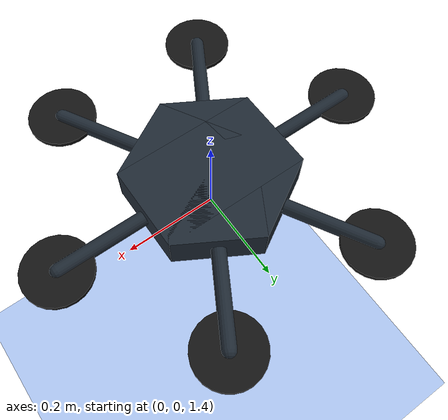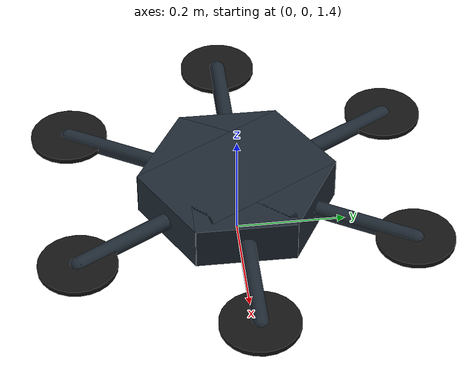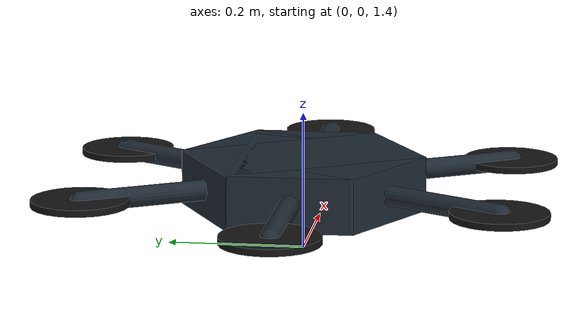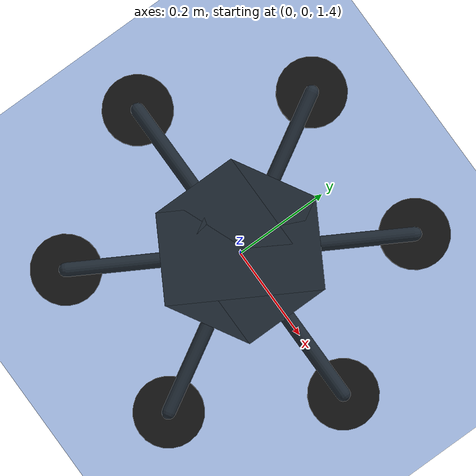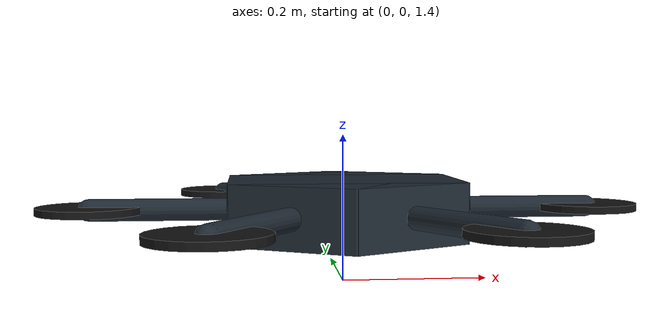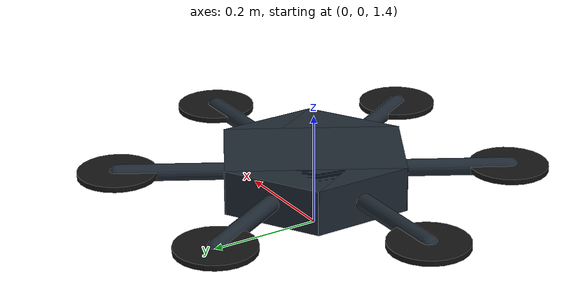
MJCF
<mujoco model="hex_uam_framework">
  <compiler angle="radian"/>
  <option timestep="0.001" gravity="0 0 -9.81"/>

  <asset>
    <texture name="ground_grid" type="2d" builtin="checker" width="512" height="512" rgb1="0.38 0.56 0.88" rgb2="0.97 0.98 1.00"/>
    <material name="ground_grid_mat" texture="ground_grid" texrepeat="10 10" texuniform="true" reflectance="0.08"/>
    <material name="drone_mat" rgba="0.12 0.16 0.20 1"/>
  </asset>

  <worldbody>
    <light pos="0 0 4"/>
    <geom name="floor" type="plane" size="5 5 0.02" material="ground_grid_mat"/>

    <body name="drone" pos="0 0 1.5">
      <freejoint name="drone_free"/>
      <geom name="drone_panel_1" type="box" pos="0 0 0" euler="0 0 0" size="0.155 0.090 0.04" material="drone_mat" mass="0.50"/>
      <geom name="drone_panel_2" type="box" pos="0 0 0" euler="0 0 1.0471975512" size="0.155 0.090 0.04" material="drone_mat" mass="0.50"/>
      <geom name="drone_panel_3" type="box" pos="0 0 0" euler="0 0 -1.0471975512" size="0.155 0.090 0.04" material="drone_mat" mass="0.50"/>
      <geom name="rotor1_arm" type="capsule" fromto="0 0 0 0.34 0 0" size="0.015" material="drone_mat" mass="0.03"/>
      <geom name="rotor2_arm" type="capsule" fromto="0 0 0 0.17 0.294 0" size="0.015" material="drone_mat" mass="0.03"/>
      <geom name="rotor3_arm" type="capsule" fromto="0 0 0 -0.17 0.294 0" size="0.015" material="drone_mat" mass="0.03"/>
      <geom name="rotor4_arm" type="capsule" fromto="0 0 0 -0.34 0 0" size="0.015" material="drone_mat" mass="0.03"/>
      <geom name="rotor5_arm" type="capsule" fromto="0 0 0 -0.17 -0.294 0" size="0.015" material="drone_mat" mass="0.03"/>
      <geom name="rotor6_arm" type="capsule" fromto="0 0 0 0.17 -0.294 0" size="0.015" material="drone_mat" mass="0.03"/>

      <body name="rotor1_body" pos="0.34 0 0">
        <site name="rotor1_site" pos="0 0 0" size="0.01"/>
        <geom type="cylinder" size="0.07 0.005" rgba="0.08 0.08 0.08 1" mass="0.01"/>
      </body>
      <body name="rotor2_body" pos="0.17 0.294 0">
        <site name="rotor2_site" pos="0 0 0" size="0.01"/>
        <geom type="cylinder" size="0.07 0.005" rgba="0.08 0.08 0.08 1" mass="0.01"/>
      </body>
      <body name="rotor3_body" pos="-0.17 0.294 0">
        <site name="rotor3_site" pos="0 0 0" size="0.01"/>
        <geom type="cylinder" size="0.07 0.005" rgba="0.08 0.08 0.08 1" mass="0.01"/>
      </body>
      <body name="rotor4_body" pos="-0.34 0 0">
        <site name="rotor4_site" pos="0 0 0" size="0.01"/>
        <geom type="cylinder" size="0.07 0.005" rgba="0.08 0.08 0.08 1" mass="0.01"/>
      </body>
      <body name="rotor5_body" pos="-0.17 -0.294 0">
        <site name="rotor5_site" pos="0 0 0" size="0.01"/>
        <geom type="cylinder" size="0.07 0.005" rgba="0.08 0.08 0.08 1" mass="0.01"/>
      </body>
      <body name="rotor6_body" pos="0.17 -0.294 0">
        <site name="rotor6_site" pos="0 0 0" size="0.01"/>
        <geom type="cylinder" size="0.07 0.005" rgba="0.08 0.08 0.08 1" mass="0.01"/>
      </body>
    </body>
  </worldbody>

  <actuator>
    <motor name="rotor1" site="rotor1_site" gear="0 0 1 0 0 0"/>
    <motor name="rotor2" site="rotor2_site" gear="0 0 1 0 0 0"/>
    <motor name="rotor3" site="rotor3_site" gear="0 0 1 0 0 0"/>
    <motor name="rotor4" site="rotor4_site" gear="0 0 1 0 0 0"/>
    <motor name="rotor5" site="rotor5_site" gear="0 0 1 0 0 0"/>
    <motor name="rotor6" site="rotor6_site" gear="0 0 1 0 0 0"/>
  </actuator>
</mujoco>
